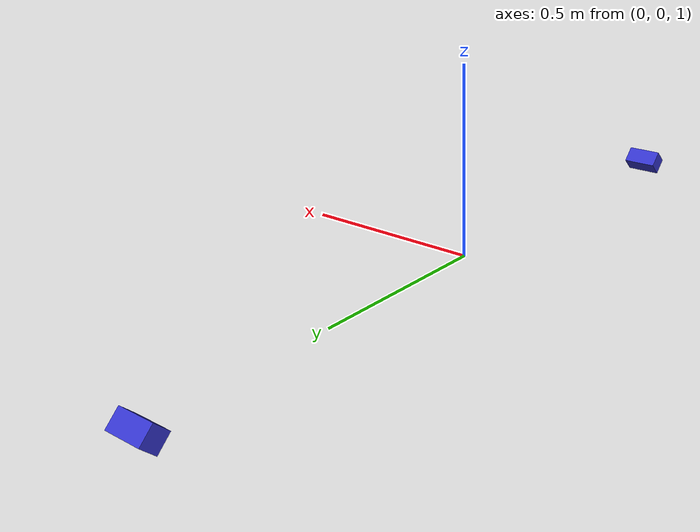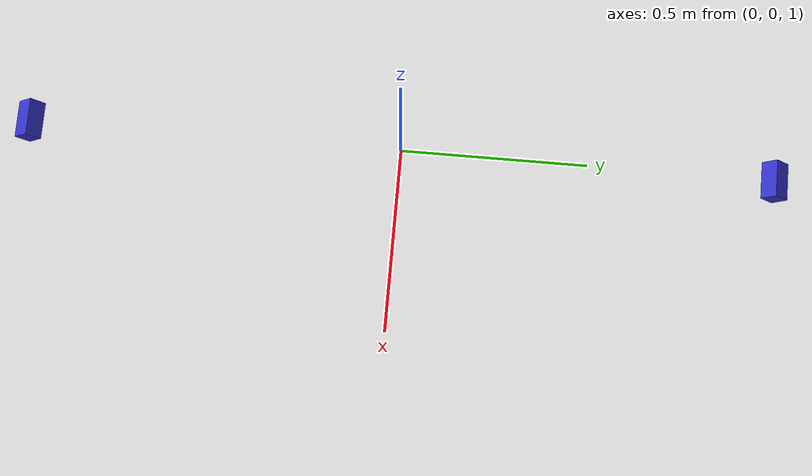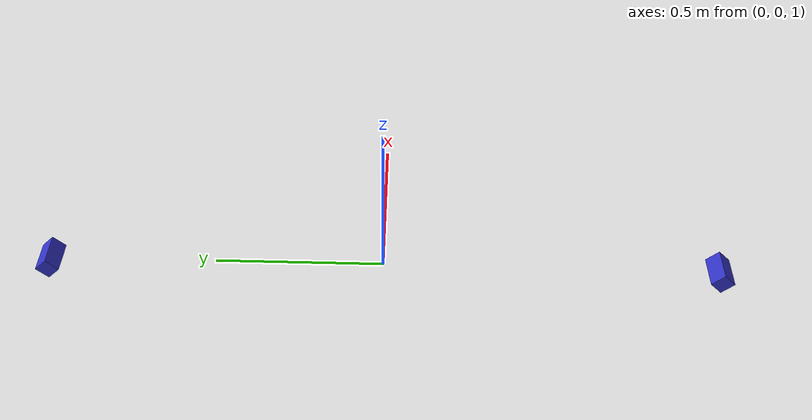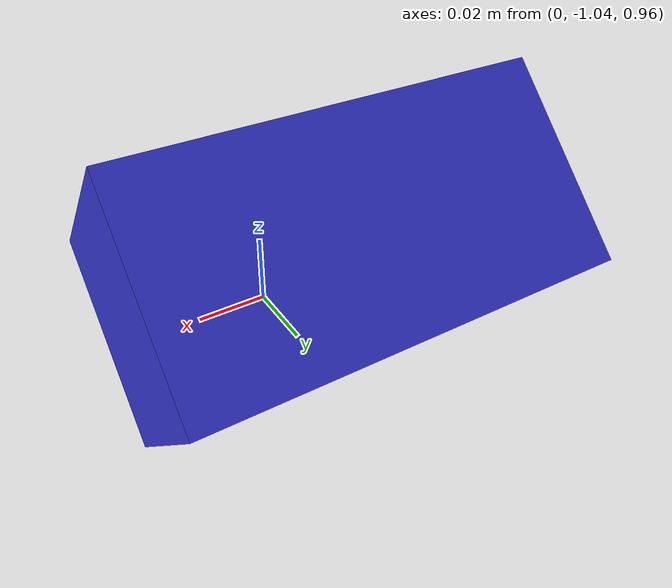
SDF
<?xml version="1.0" ?>
<sdf version="1.9">
  <world name="measure_world">

    <!-- 基础物理与光照 -->
    <physics name="1ms" type="ignored">
      <max_step_size>0.001</max_step_size>
      <real_time_factor>1.0</real_time_factor>
    </physics>
    <plugin filename="gz-sim-physics-system" name="gz::sim::systems::Physics"/>
    <plugin filename="gz-sim-user-commands-system" name="gz::sim::systems::UserCommands"/>
    <plugin filename="gz-sim-scene-broadcaster-system" name="gz::sim::systems::SceneBroadcaster"/>
    <plugin filename="gz-sim-sensors-system" name="gz::sim::systems::Sensors">
      <render_engine>ogre2</render_engine>
    </plugin>

    <light name="sun" type="directional">
      <cast_shadows>true</cast_shadows>
      <pose>0 0 10 0 0 0</pose>
      <diffuse>1 1 1 1</diffuse>
      <specular>0.5 0.5 0.5 1</specular>
      <direction>-0.5 0.1 -0.9</direction>
    </light>

    <!--
      管道模型预留位置：
      - 管道轴向为 X 轴，中心在原点（z=0）
      - 由 launch 文件动态加载（ros_gz_sim create）
      - 示例：ros2 run ros_gz_sim create -world measure_world -file straight_tube.sdf
    -->

    <!-- ===== 相机（静态，从侧上方 45° 向内向下看） ===== -->
    <!--
      两台 RGBD 相机位于 YZ 平面（x=0），
      位于 y=±1.0m、z=1.0m，呈 45° 斜向内俯视管道轴线。
      SDF camera 默认光轴朝 +X，通过 rpy 旋转使光轴指向管道。
    -->

    <!-- rgbd_1：+Y 侧，45° 向内向下 -->
    <model name="rgbd_1">
      <static>true</static>
      <!-- yaw=-π/2 使+X轴朝-Y（朝管道），pitch=+π/4 使光轴向下45° -->
      <pose>0 1.0 1.0  0 0.7854 -1.5708</pose>
      <link name="camera_link">
        <visual name="body">
          <geometry><box><size>0.05 0.1 0.05</size></box></geometry>
          <material>
            <ambient>0.2 0.2 0.8 1</ambient>
            <diffuse>0.2 0.2 0.8 1</diffuse>
          </material>
        </visual>
        <sensor name="rgbd_1" type="rgbd_camera">
          <always_on>true</always_on>
          <update_rate>10</update_rate>
          <topic>/rgbd_1</topic>
          <camera>
            <horizontal_fov>1.047</horizontal_fov>
            <image>
              <width>848</width>
              <height>480</height>
              <format>RGB_INT8</format>
            </image>
            <clip><near>0.1</near><far>2.0</far></clip>
            <noise>
              <type>gaussian</type>
              <mean>0.0</mean>
              <stddev>0.002</stddev>
            </noise>
            <depth_camera>
              <clip><near>0.1</near><far>2.0</far></clip>
            </depth_camera>
          </camera>
        </sensor>
      </link>
    </model>

    <!-- rgbd_2：-Y 侧，45° 向内向下 -->
    <model name="rgbd_2">
      <static>true</static>
      <!-- yaw=+π/2 使+X轴朝+Y（朝管道），pitch=+π/4 使光轴向下45° -->
      <pose>0 -1.0 1.0  0 0.7854 1.5708</pose>
      <link name="camera_link">
        <visual name="body">
          <geometry><box><size>0.05 0.1 0.05</size></box></geometry>
          <material>
            <ambient>0.2 0.2 0.8 1</ambient>
            <diffuse>0.2 0.2 0.8 1</diffuse>
          </material>
        </visual>
        <sensor name="rgbd_2" type="rgbd_camera">
          <always_on>true</always_on>
          <update_rate>10</update_rate>
          <topic>/rgbd_2</topic>
          <camera>
            <horizontal_fov>1.047</horizontal_fov>
            <image>
              <width>848</width>
              <height>480</height>
              <format>RGB_INT8</format>
            </image>
            <clip><near>0.1</near><far>2.0</far></clip>
            <noise>
              <type>gaussian</type>
              <mean>0.0</mean>
              <stddev>0.002</stddev>
            </noise>
            <depth_camera>
              <clip><near>0.1</near><far>2.0</far></clip>
            </depth_camera>
          </camera>
        </sensor>
      </link>
    </model>

  </world>
</sdf>
